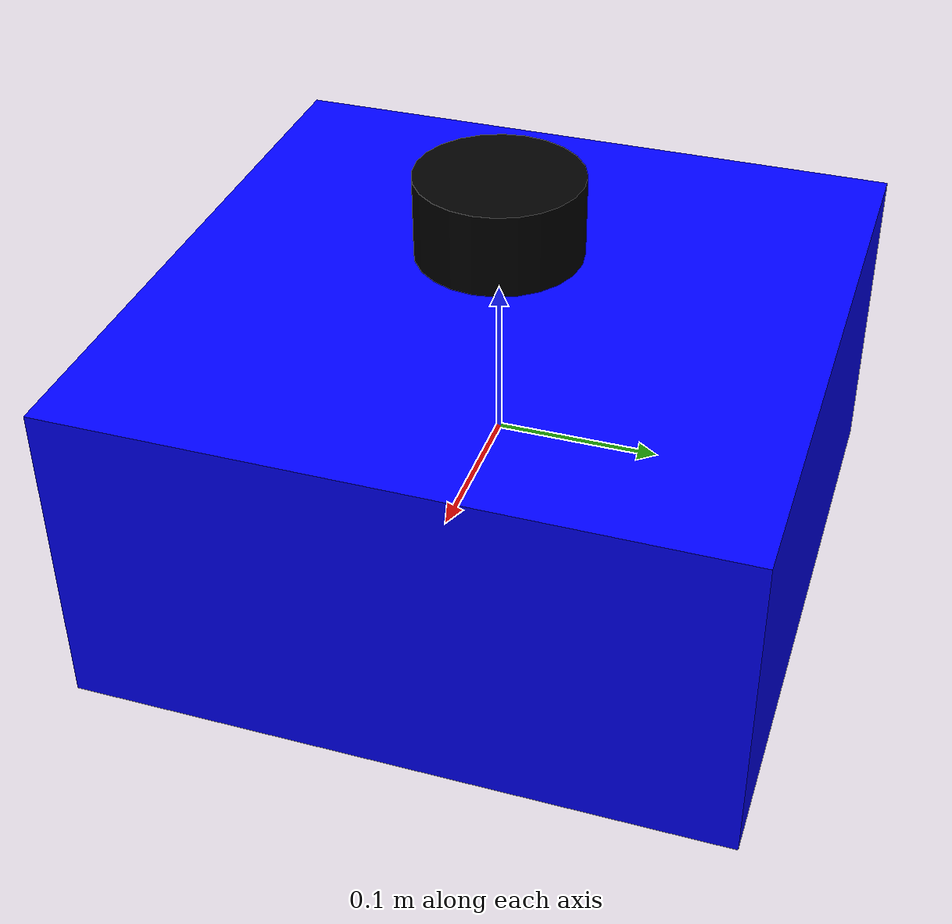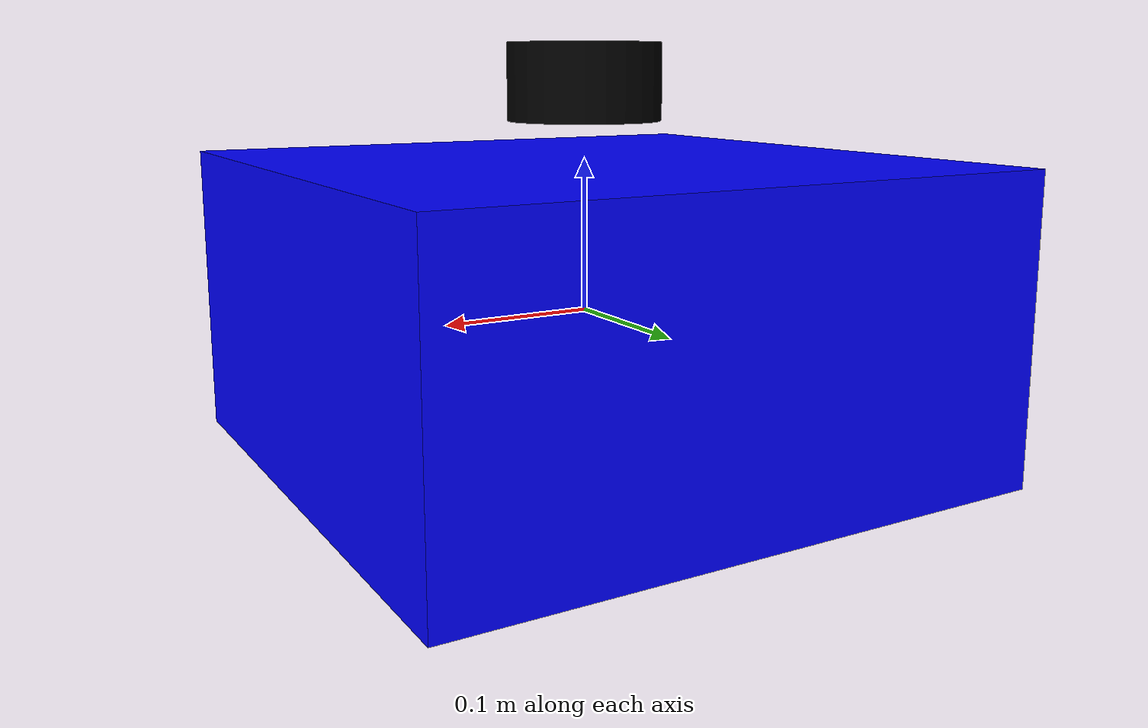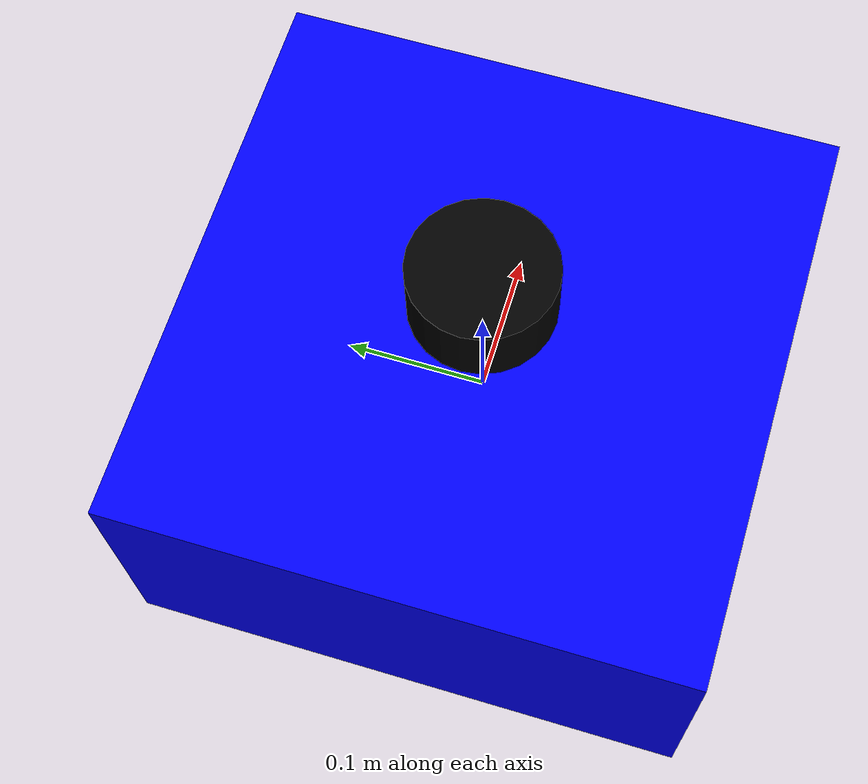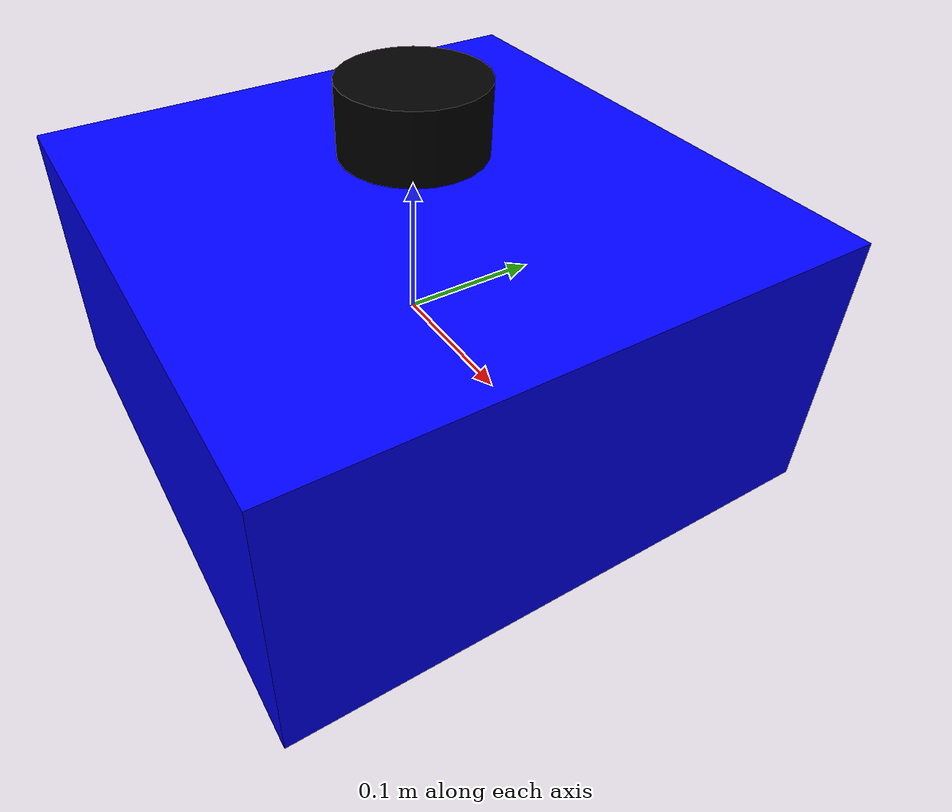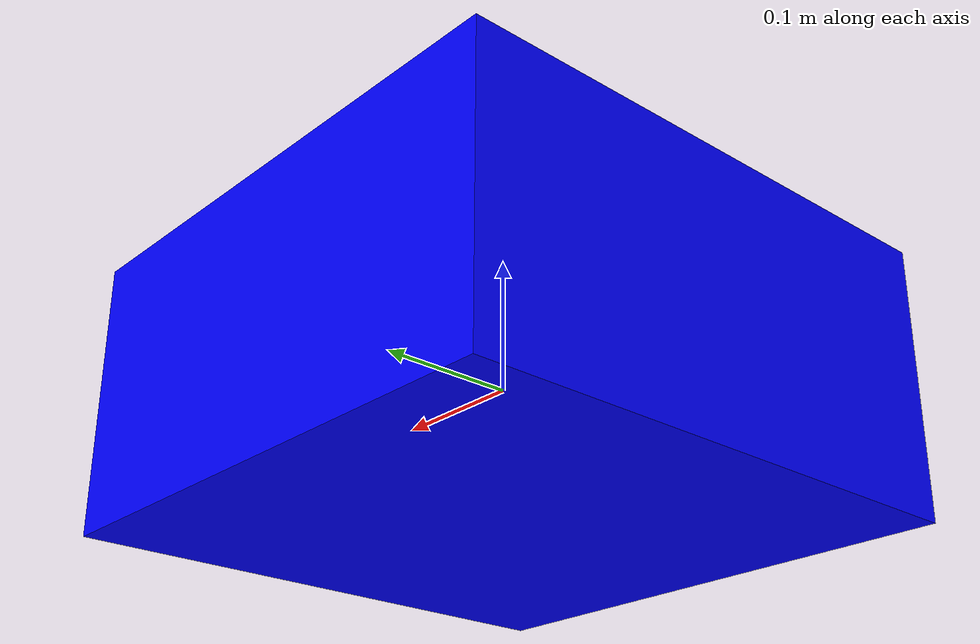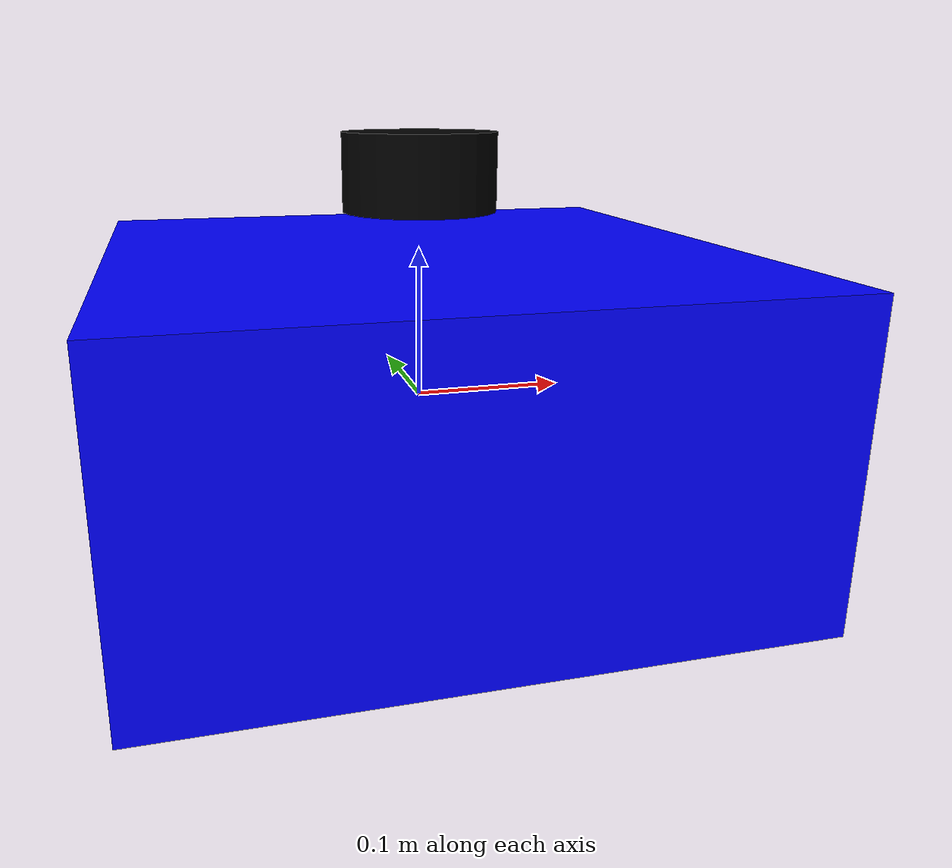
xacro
<?xml version="1.0"?>
<robot xmlns:xacro="http://ros.org/wiki/xacro" name="gps_bot">

  <!-- 機器人本體 -->
  <link name="base_link">
    <visual>
      <geometry>
        <box size="0.4 0.4 0.2"/>
      </geometry>
      <material name="blue">
        <color rgba="0 0 1 1"/>
      </material>
    </visual>
    <collision>
      <geometry>
        <box size="0.4 0.4 0.2"/>
      </geometry>
    </collision>
    <inertial>
      <mass value="1.0"/>
      <inertia ixx="0.01" iyy="0.01" izz="0.01"
               ixy="0.0" ixz="0.0" iyz="0.0"/>
    </inertial>
  </link>

  <!-- 雷射連結 -->
  <link name="laser_link">
    <visual>
      <geometry>
        <cylinder length="0.05" radius="0.05"/>
      </geometry>
      <material name="black">
        <color rgba="0 0 0 1"/>
      </material>
    </visual>
    <collision>
      <geometry>
        <cylinder length="0.05" radius="0.05"/>
      </geometry>
    </collision>
    <inertial>
      <mass value="0.1"/>
      <inertia ixx="0.001" iyy="0.001" izz="0.001"
               ixy="0.0" ixz="0.0" iyz="0.0"/>
    </inertial>
  </link>

  <!-- 雷射座標關係 -->
  <joint name="laser_joint" type="fixed">
    <parent link="base_link"/>
    <child link="laser_link"/>
    <origin xyz="0 0 0.15" rpy="0 0 0"/>
  </joint>

  <!-- Gazebo Plugin: 雷射 -->
  <gazebo reference="laser_link">
    <sensor type="ray" name="laser_sensor">
      <update_rate>10.0</update_rate>
      <ray>
        <scan>
          <horizontal>
            <samples>360</samples>
            <resolution>1</resolution>
            <min_angle>-1.57</min_angle>
            <max_angle>1.57</max_angle>
          </horizontal>
        </scan>
        <range>
          <min>0.1</min>
          <max>10.0</max>
        </range>
        <noise>
          <type>gaussian</type>
          <mean>0.0</mean>
          <stddev>0.01</stddev>
        </noise>
      </ray>
      <plugin name="gazebo_ros_laser_controller" filename="libgazebo_ros_laser.so">
        <topicName>/scan</topicName>
        <frameName>laser_link</frameName>
      </plugin>
    </sensor>
  </gazebo>

  <!-- GPS plugin -->
  <gazebo>
    <plugin name="gps_plugin" filename="libhector_gazebo_ros_gps.so">
      <topicName>/fix</topicName>
      <bodyName>base_link</bodyName>
      <frameName>gps_link</frameName>
      <updateRate>5.0</updateRate>
    </plugin>
  </gazebo>

</robot>
